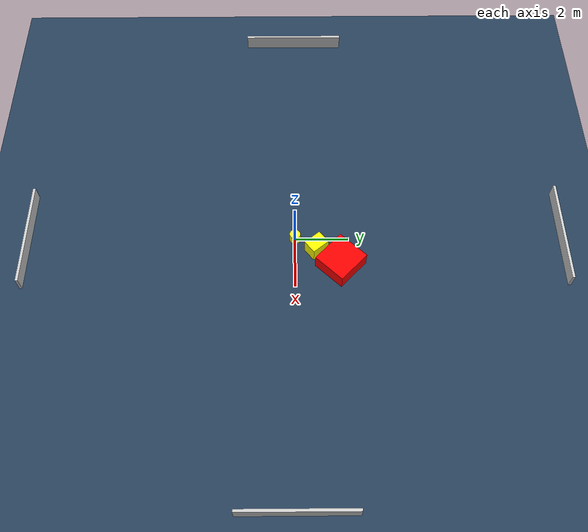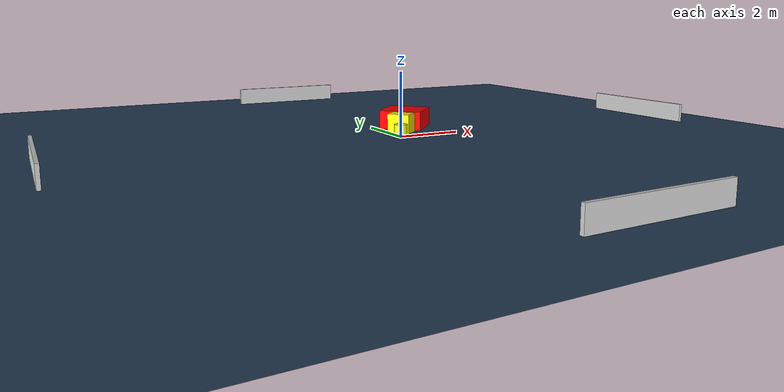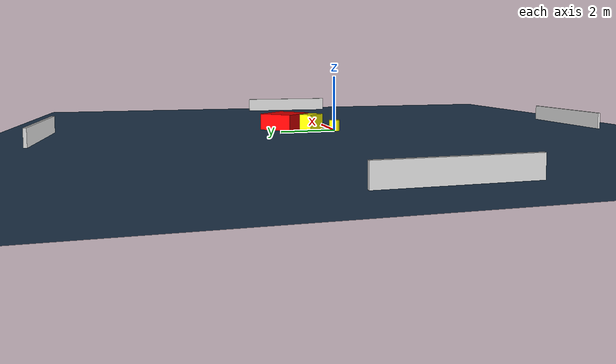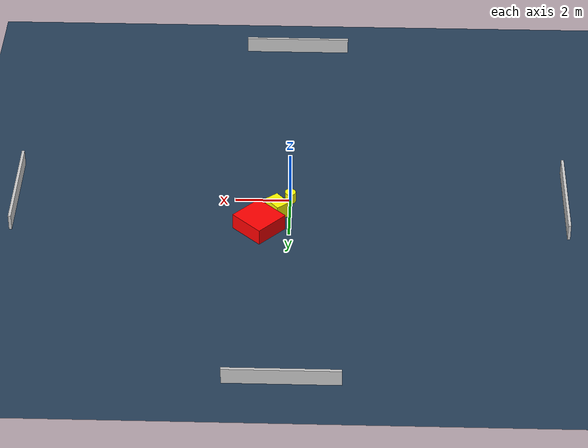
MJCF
<?xml version="1.0" ?>
<mujoco model="generated_environment">
  <option timestep="0.01" integrator="RK4" cone="elliptic"/>
  <default>
    <geom density="1"/>
  </default>
  <asset>
    <texture builtin="gradient" height="3072" name="skybox" rgb1="0.3 0.5 0.7" rgb2="0 0 0" type="skybox" width="512"/>
    <texture builtin="checker" height="300" name="groundplane" rgb1="0.2 0.3 0.4" rgb2="0.1 0.2 0.3" type="2d" width="300"/>
    <material name="groundplane" reflectance="0.2" texrepeat="5 5" texture="groundplane"/>
  </asset>
  <worldbody>
    <light dir="0 0 -1" directional="true" pos="0 0 1.5"/>
    <geom condim="3" friction="0.5 0.005 0.001" material="groundplane" name="floor" pos="0 0 0" size="0 0 0.05" type="plane"/>
    <body name="walls">
      <geom name="wall_1" condim="4" pos="-10.0 0.0 0.3" rgba="0.800000011920929 0.800000011920929 0.800000011920929 1.0" size="0.05 2.0 0.3" type="box"/>
      <geom name="wall_2" condim="4" pos="10.0 0.0 0.3" rgba="0.800000011920929 0.800000011920929 0.800000011920929 1.0" size="0.05 2.0 0.3" type="box"/>
      <geom name="wall_3" condim="4" pos="0.0 -10.0 0.3" rgba="0.800000011920929 0.800000011920929 0.800000011920929 1.0" size="2.0 0.05 0.3" type="box"/>
      <geom name="wall_4" condim="4" pos="0.0 10.0 0.3" rgba="0.800000011920929 0.800000011920929 0.800000011920929 1.0" size="2.0 0.05 0.3" type="box"/>
    </body>
    <body name="robot">
      <joint name="joint_x" type="slide" pos="0 0 0" axis="1 0 0"/>
      <joint name="joint_y" type="slide" pos="0 0 0" axis="0 1 0"/>
      <geom name="robot" type="cylinder" pos="0.0 0.0 0.2" size="0.2 0.2 0.0" mass="5.0" friction="1.0 0.005 0.0001" condim="4" rgba="1.0 1.0 0.0 1.0"/>
    </body>
    <body name="obstacle_1_movable">
      <geom name="obstacle_1_movable" condim="4" pos="0.44954668868069153 0.7970231627419331 0.3" euler="0 0 309.12293611079144" friction="0.0 0.005 0.001" rgba="1.0 1.0 0.0 1.0" size="0.3583358682339267 0.2682587078435753 0.3" type="box" mass="0.1"/>
      <joint type="free"/>
    </body>
    <body name="obstacle_2_static">
      <geom name="obstacle_2_static" condim="4" pos="1.0764272332022242 1.6774512195498061 0.3" euler="0 0 46.424021739649575" friction="0.0 0.005 0.001" rgba="1.0 0.0 0.0 1.0" size="0.6530522887318755 0.6821821150424605 0.3" type="box"/>
    </body>
  </worldbody>
  <actuator>
    <motor name="actuator_x" joint="joint_x" gear="1" ctrlrange="-1 1"/>
    <motor name="actuator_y" joint="joint_y" gear="1" ctrlrange="-1 1"/>
  </actuator>
</mujoco>
